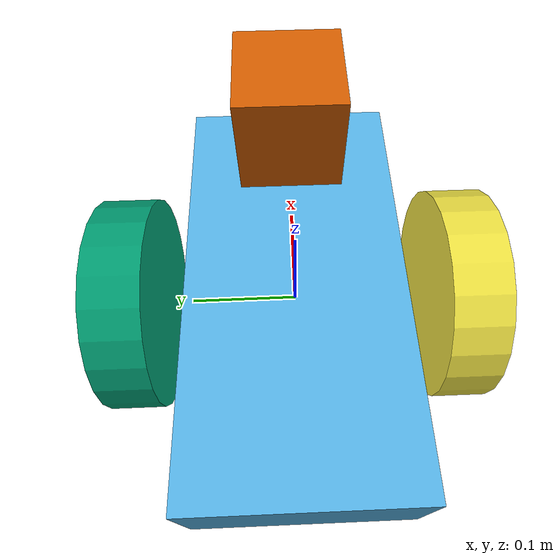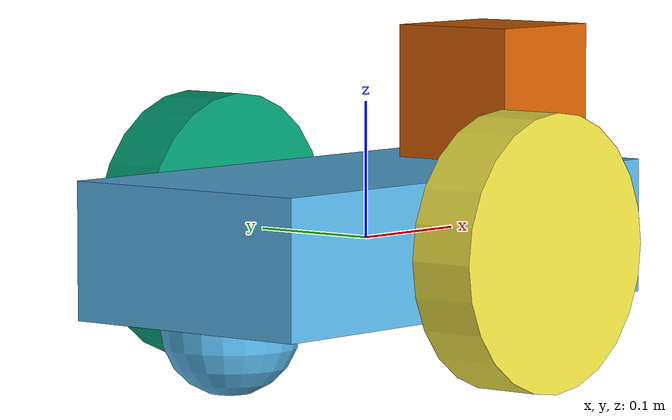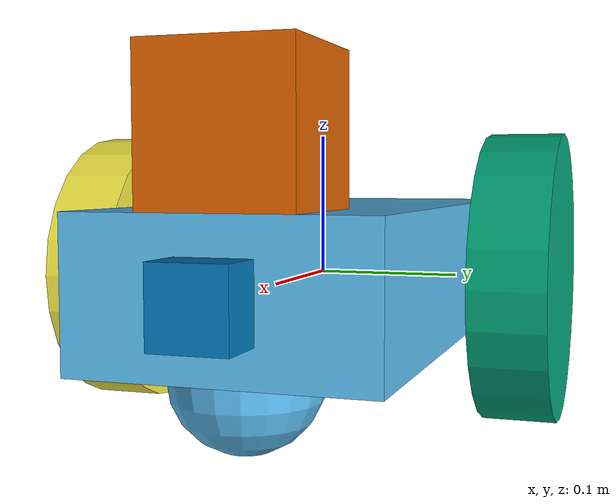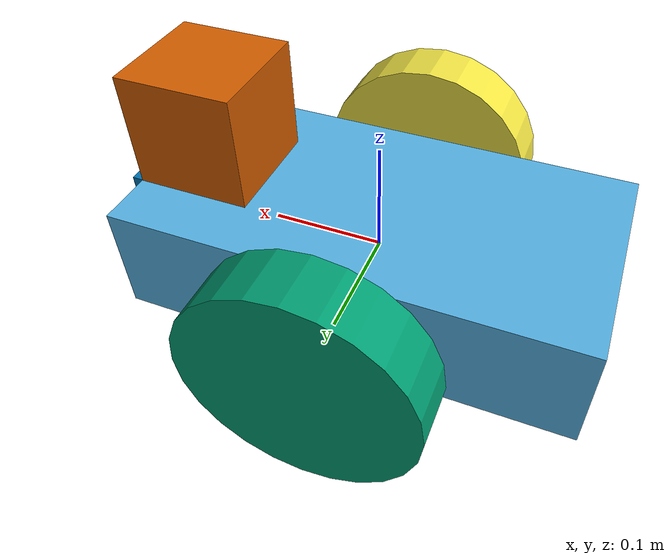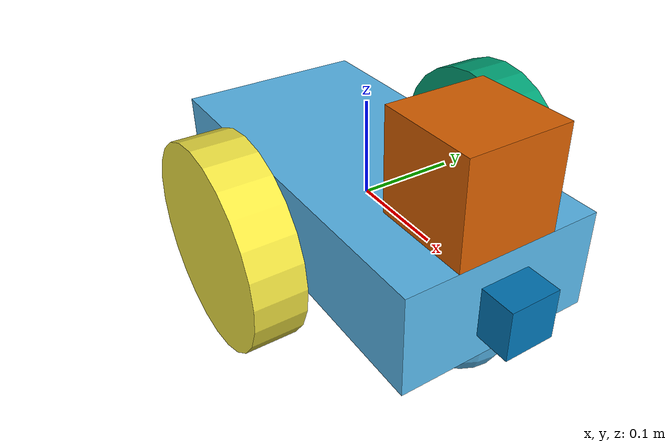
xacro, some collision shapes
<?xml version='1.0'?>

<robot name="udacity_bot" xmlns:xacro="http://www.ros.org/wiki/xacro">

   <material name="blue">
       <color rgba="0 0 0.8 1"/>
     </material>
     <material name="green">
       <color rgba="0 0.8 0 1"/>
     </material>
     <material name="white">
       <color rgba="1 1 1 1"/>
   </material>

  <link name="robot_footprint"></link>
  <xacro:include filename="$(find udacity_bot)/urdf/udacity_bot.gazebo" />

  <joint name="robot_footprint_joint" type="fixed">
    <origin xyz="0 0 0" rpy="0 0 0" />
    <parent link="robot_footprint"/>
    <child link="chassis" />
  </joint>

  <link name='chassis'>

    <pose>0 0 0.1 0 0 0</pose>

    <inertial>
      <mass value="15.0"/>
      <origin xyz="0.0 0 0" rpy=" 0 0 0"/>
      <inertia
          ixx="0.1" ixy="0" ixz="0"
          iyy="0.1" iyz="0"
          izz="0.1"
      />
    </inertial>

    <collision name='collision'>
      <origin xyz="0 0 0" rpy=" 0 0 0"/>
      <geometry>
        <box size=".4 .2 .1"/>
      </geometry>
    </collision>

    <visual name='chassis_visual'>
      <origin xyz="0 0 0" rpy=" 0 0 0"/>
      <geometry>
        <box size=".4 .2 .1"/>
      </geometry>
    </visual>

    <collision name='back_caster_collision'>
      <origin xyz="-0.15 0 -0.05" rpy=" 0 0 0"/>
      <geometry>
        <sphere radius="0.0499"/>
      </geometry>
    </collision>

    <visual name='back_caster_visual'>
      <origin xyz="-0.15 0 -0.05" rpy=" 0 0 0"/>
      <geometry>
        <sphere radius="0.05"/>
      </geometry>
    </visual>

    <collision name='front_caster_collision'>
      <origin xyz="0.15 0 -0.05" rpy=" 0 0 0"/>
      <geometry>
        <sphere radius="0.0499"/>
      </geometry>
    </collision>

    <visual name='front_caster_visual'>
      <origin xyz="0.15 0 -0.05" rpy=" 0 0 0"/>
      <geometry>
        <sphere radius="0.05"/>
      </geometry>
    </visual>

  </link>

    <link name='left_wheel'>
    <inertial>
      <mass value="5.0"/>
      <origin xyz="0.0 0 0" rpy=" 0 1.5707 1.5707"/>
      <inertia
          ixx="0.1" ixy="0" ixz="0"
          iyy="0.1" iyz="0"
          izz="0.1"
      />
    </inertial>

    <collision name='leftwheel'>
      <origin xyz="0 0 0" rpy=" 0 1.5707 1.5707"/>
      <geometry>
        <cylinder radius="0.1" length = "0.05"/>
      </geometry>
    </collision>

    <visual name='left_visual'>
      <origin xyz="0 0 0" rpy=" 0 1.5707 1.5707"/>
      <geometry>
        <cylinder radius="0.1" length = "0.05"/>
      </geometry>
    </visual>
  </link>

  <joint type="continuous" name="left_wheel_hinge">
    <origin xyz="0 0.15 0" rpy="0 0 0"/>
    <child link="left_wheel"/>
    <parent link="chassis"/>
    <axis xyz="0 1 0" rpy="0 0 0"/>
    <limit effort="10000" velocity="1000"/>
    <dynamics damping="1.0" friction="1.0"/>
  </joint>

    <link name='right_wheel'>
    <inertial>
      <mass value="5.0"/>
      <origin xyz="0.0 0 0" rpy=" 0 1.5707 1.5707"/>
      <inertia
          ixx="0.1" ixy="0" ixz="0"
          iyy="0.1" iyz="0"
          izz="0.1"
      />
    </inertial>

    <collision name='rightwheel'>
      <origin xyz="0 0 0" rpy=" 0 1.5707 1.5707"/>
      <geometry>
        <cylinder radius="0.1" length = "0.05"/>
      </geometry>
    </collision>

    <visual name='right_visual'>
      <origin xyz="0 0 0" rpy=" 0 1.5707 1.5707"/>
      <geometry>
        <cylinder radius="0.1" length = "0.05"/>
      </geometry>
    </visual>
  </link>

    <joint type="continuous" name="right_wheel_hinge">
    <origin xyz="0 -0.15 0" rpy="0 0 0"/>
    <child link="right_wheel"/>
    <parent link="chassis"/>
    <axis xyz="0 1 0" rpy="0 0 0"/>
    <limit effort="10000" velocity="1000"/>
    <dynamics damping="1.0" friction="1.0"/>
  </joint>

<joint type="fixed" name="camera_joint">
    <origin xyz="0.2 0 0" rpy="0 0 0"/>
    <child link="camera"/>
    <parent link="chassis"/>
  </joint>

  <link name='camera'>
    <inertial>
      <mass value="0.1"/>
      <origin xyz="0 0 0" rpy=" 0 0 0"/>
      <inertia
          ixx="1e-6" ixy="0" ixz="0"
          iyy="1e-6" iyz="0"
          izz="1e-6"
      />
    </inertial>

    <collision name='camera_shape'>
      <origin xyz="0.01 0 0" rpy=" 0 0 0"/>
      <geometry>
        <box size="0.05 0.05 0.05"/>
      </geometry>
    </collision>

    <visual name='camera_visual'>
      <origin xyz="0.01 0 0" rpy=" 0 0 0"/>
      <geometry>
        <box size="0.05 0.05 0.05"/>
      </geometry>
    </visual>
  </link>

<joint type="fixed" name="hokuyo_joint">
    <origin xyz="0.15 0 0.1" rpy="0 0 0"/>
    <child link="hokuyo"/>
    <parent link="chassis"/>
  </joint>

  <link name='hokuyo'>
    <inertial>
      <mass value="0.1"/>
      <origin xyz="0 0 0" rpy=" 0 0 0"/>
      <inertia
          ixx="1e-6" ixy="0" ixz="0"
          iyy="1e-6" iyz="0"
          izz="1e-6"
      />
    </inertial>

    <collision name='hokuyo_shape'>
      <origin xyz="0 0 0" rpy=" 0 0 0"/>
      <geometry>
        <box size="0.1 0.1 0.1"/>
      </geometry>
    </collision>

    <visual name='hokuyo_visual'>
      <origin xyz="0 0 0" rpy=" 0 0 0"/>
      <geometry>
        <mesh filename="package://udacity_bot/meshes/hokuyo.dae"/>
      </geometry>
    </visual>
  </link>
</robot>
